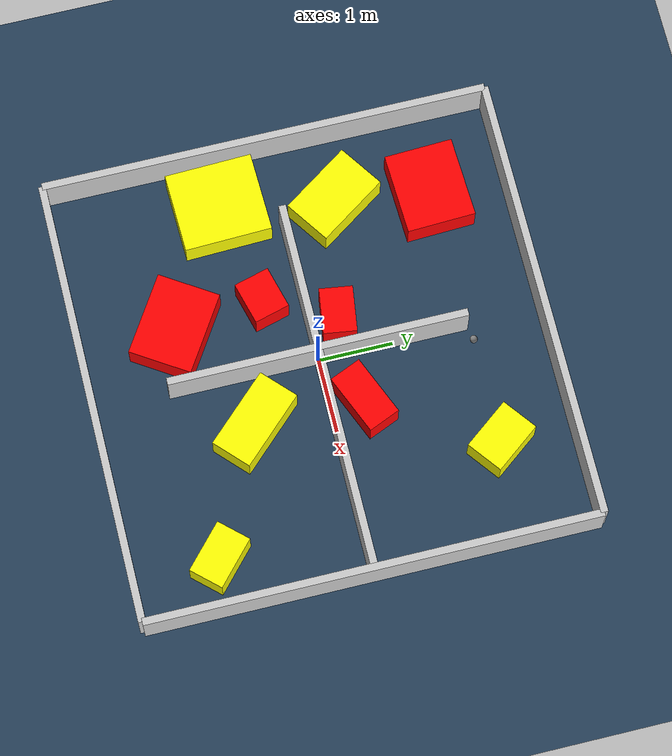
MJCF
<?xml version="1.0" ?>
<mujoco model="generated_environment">
  <option timestep="0.01" integrator="RK4" cone="elliptic"/>
  <default>
    <geom density="1"/>
  </default>
  <asset>
    <texture builtin="gradient" height="3072" rgb1="0.3 0.5 0.7" rgb2="0 0 0" type="skybox" width="512"/>
    <texture builtin="checker" height="300" mark="edge" markrgb="0.8 0.8 0.8" name="groundplane" rgb1="0.2 0.3 0.4" rgb2="0.1 0.2 0.3" type="2d" width="300"/>
    <material name="groundplane" reflectance="0.2" texrepeat="5 5" texture="groundplane" texuniform="true"/>
    <material name="robot" rgba="0.0 1.0 0.0 1"/>
  </asset>
  <worldbody>
    <light dir="0 0 -1" directional="true" pos="0 0 1.5"/>
    <geom condim="4" friction="1.0 0.005 0.001" material="groundplane" name="floor" size="0 0 0.05" type="plane"/>
    <body name="walls">
      <geom name="wall_1" condim="4" pos="-3.0 0.0 0.3" rgba="0.800000011920929 0.800000011920929 0.800000011920929 1.0" size="0.05 3.0 0.3" type="box"/>
      <geom name="wall_2" condim="4" pos="3.0 0.0 0.3" rgba="0.800000011920929 0.800000011920929 0.800000011920929 1.0" size="0.05 3.0 0.3" type="box"/>
      <geom name="wall_3" condim="4" pos="0.0 -3.0 0.3" rgba="0.800000011920929 0.800000011920929 0.800000011920929 1.0" size="3.0 0.05 0.3" type="box"/>
      <geom name="wall_4" condim="4" pos="0.0 3.0 0.3" rgba="0.800000011920929 0.800000011920929 0.800000011920929 1.0" size="3.0 0.05 0.3" type="box"/>
      <geom name="wall_5" condim="4" pos="1.5 0.0 0.3" rgba="0.800000011920929 0.800000011920929 0.800000011920929 1.0" size="1.5 0.05 0.3" type="box"/>
      <geom name="wall_6" condim="4" pos="-1.0 0.0 0.3" rgba="0.800000011920929 0.800000011920929 0.800000011920929 1.0" size="1.0 0.05 0.3" type="box"/>
      <geom name="wall_7" condim="4" pos="0.0 -1.0 0.3" rgba="0.800000011920929 0.800000011920929 0.800000011920929 1.0" size="0.05 1.0 0.3" type="box"/>
      <geom name="wall_8" condim="4" pos="0.0 1.0 0.3" rgba="0.800000011920929 0.800000011920929 0.800000011920929 1.0" size="0.05 1.0 0.3" type="box"/>
    </body>
    <body name="robot">
      <joint name="joint_x" type="slide" pos="0 0 0" axis="1 0 0"/>
      <joint name="joint_y" type="slide" pos="0 0 0" axis="0 1 0"/>
      <geom name="robot" type="sphere" pos="0.2549808266364715 2.0247067456918866 0.2" size="0.05" mass="5." friction="1.0 0.005 0.0001" condim="4"/>
      <site name="sensor_ball"/>
    </body>
    <body name="obstacle_1_movable">
      <geom name="obstacle_1_movable" condim="4" pos="1.6642302514349554 2.022744097755723 0.2" euler="0 0 37.26909064870721" friction="1.0 0.005 0.001" rgba="1 1 0 1" size="0.2644633026173763 0.37216005922893536 0.2" type="box" mass="0.1"/>
      <joint type="free"/>
    </body>
    <body name="obstacle_2_movable">
      <geom name="obstacle_2_movable" condim="4" pos="0.6949426907539102 -1.0074486775524185 0.2" euler="0 0 223.51627347143554" friction="1.0 0.005 0.001" rgba="1 1 0 1" size="0.28359300763019035 0.5634714710341246 0.2" type="box" mass="0.1"/>
      <joint type="free"/>
    </body>
    <body name="obstacle_3_static">
      <geom name="obstacle_3_static" condim="4" pos="-0.8163378391501137 -1.7249886125937932 0.2" euler="0 0 57.27118662168764" friction="1.0 0.005 0.001" rgba="1 0 0 1" size="0.4287313920363449 0.5611668266918701 0.2" type="box"/>
    </body>
    <body name="obstacle_4_static">
      <geom name="obstacle_4_static" condim="4" pos="0.7137115222153496 0.4419541681711534 0.2" euler="0 0 202.80822198148002" friction="1.0 0.005 0.001" rgba="1 0 0 1" size="0.42831261896932993 0.22612101761991574 0.2" type="box"/>
    </body>
    <body name="obstacle_5_movable">
      <geom name="obstacle_5_movable" condim="4" pos="-2.070648379713013 0.7194456927178012 0.2" euler="0 0 34.2075489701461" friction="1.0 0.005 0.001" rgba="1 1 0 1" size="0.3410180581285615 0.535059104485998 0.2" type="box" mass="0.1"/>
      <joint type="free"/>
    </body>
    <body name="obstacle_6_static">
      <geom name="obstacle_6_static" condim="4" pos="-1.890819807825772 1.9758253877117538 0.2" euler="0 0 272.463346451377" friction="1.0 0.005 0.001" rgba="1 0 0 1" size="0.4610563107540427 0.5466931825002488 0.2" type="box"/>
    </body>
    <body name="obstacle_7_static">
      <geom name="obstacle_7_static" condim="4" pos="-0.9218247924944094 -0.533948014412835 0.2" euler="0 0 285.0977294341323" friction="1.0 0.005 0.001" rgba="1 0 0 1" size="0.2433565647468063 0.2910752552349508 0.2" type="box"/>
    </body>
    <body name="obstacle_8_movable">
      <geom name="obstacle_8_movable" condim="4" pos="2.332937188109954 -1.852608007374352 0.2" euler="0 0 47.63166149053787" friction="1.0 0.005 0.001" rgba="1 1 0 1" size="0.23818393825178408 0.36432334978933445 0.2" type="box" mass="0.1"/>
      <joint type="free"/>
    </body>
    <body name="obstacle_9_static">
      <geom name="obstacle_9_static" condim="4" pos="-0.49390005411596416 0.3849562280820735 0.2" euler="0 0 351.89779839386847" friction="1.0 0.005 0.001" rgba="1 0 0 1" size="0.3098180603407933 0.2229213882417828 0.2" type="box"/>
    </body>
    <body name="obstacle_10_movable">
      <geom name="obstacle_10_movable" condim="4" pos="-2.319939831964237 -0.7900740347113573 0.2" euler="0 0 91.9139602200481" friction="1.0 0.005 0.001" rgba="1 1 0 1" size="0.5855388120101976 0.5400200677076386 0.2" type="box" mass="0.1"/>
      <joint type="free"/>
    </body>
  </worldbody>
  <actuator>
    <motor name="actuator_x" joint="joint_x" gear="1" ctrlrange="-1 1"/>
    <motor name="actuator_y" joint="joint_y" gear="1" ctrlrange="-1 1"/>
  </actuator>
</mujoco>
